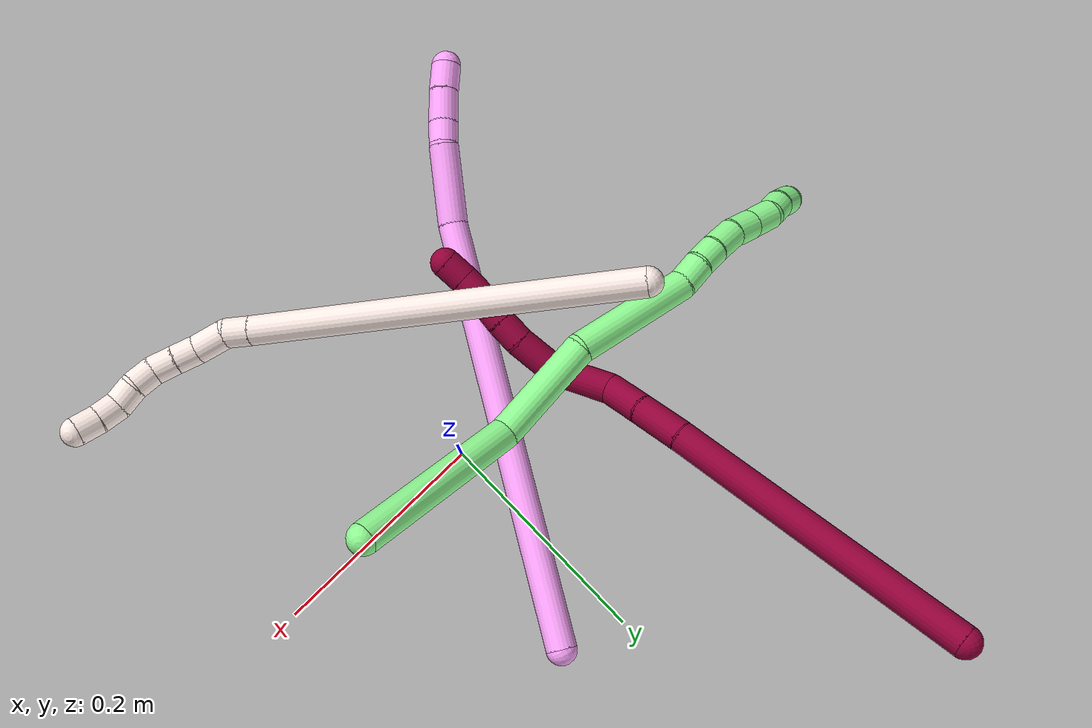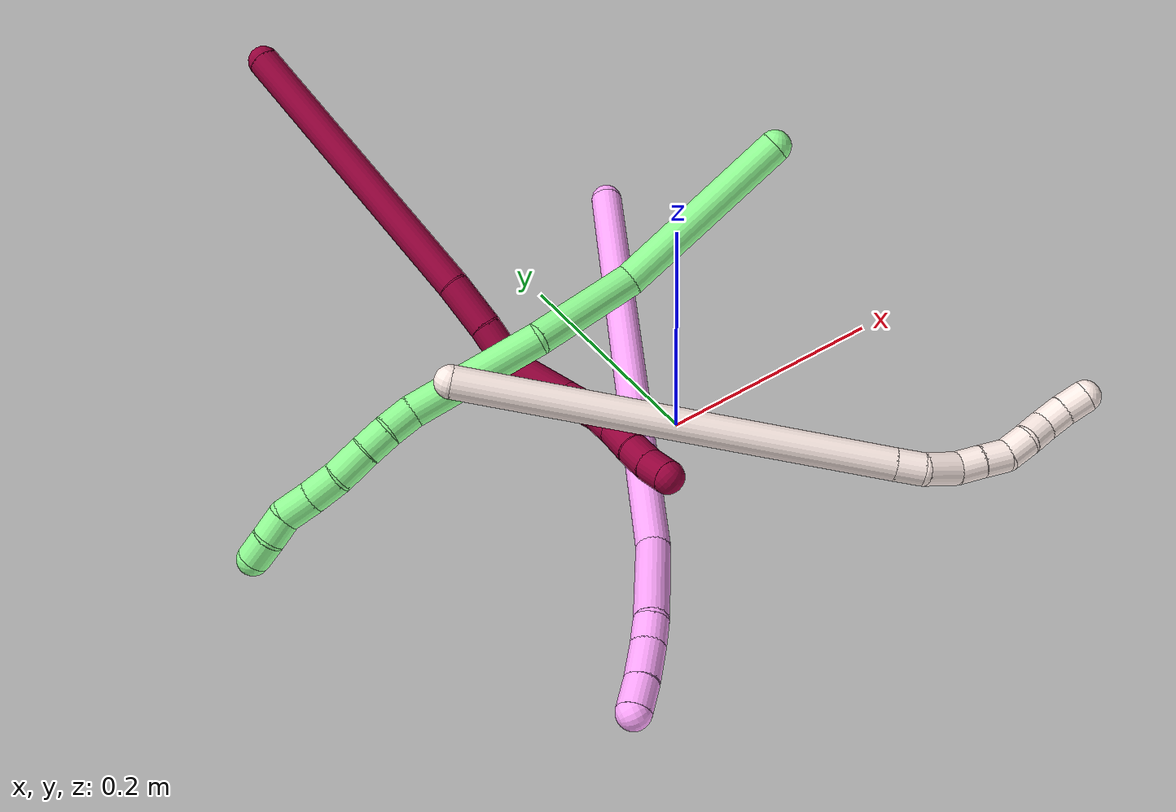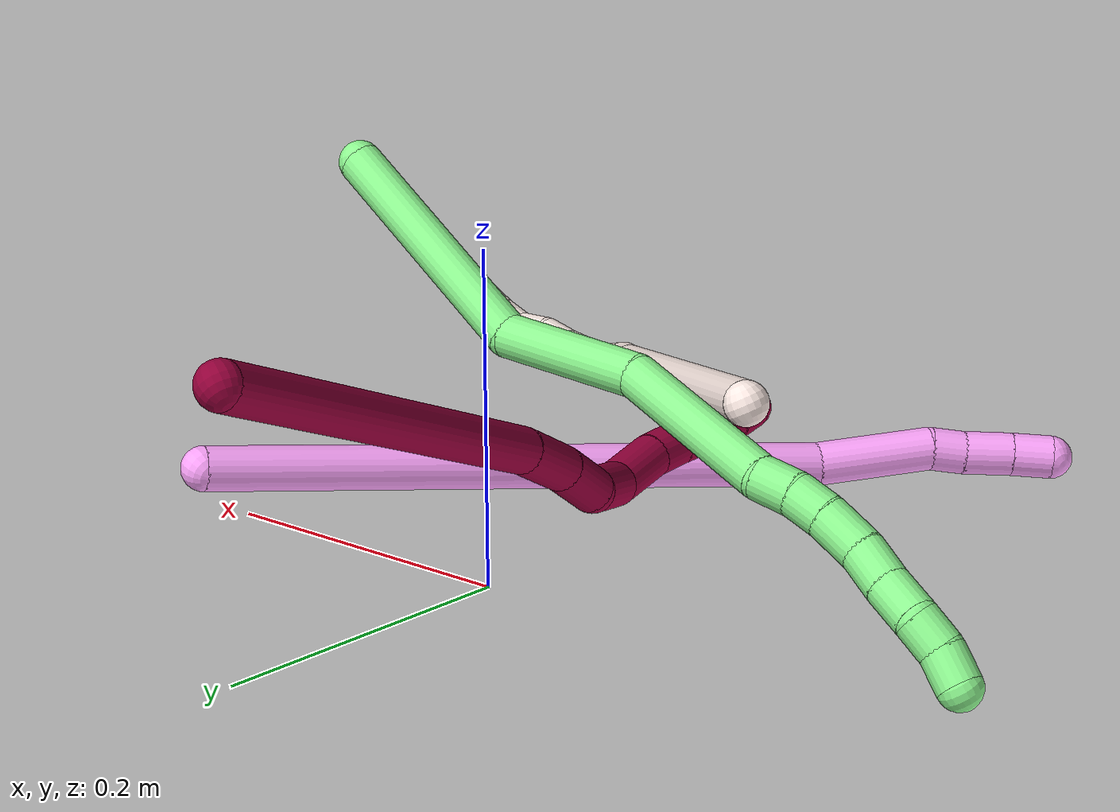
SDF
<sdf version="1.7">
 <world name="default">
  <model name="4">
   <static>0</static>
   <link name="4">
    <collision name="collision-cylinder-e_1_1_4">
     <pose>-0.142462 -0.096013 0.052816 1.06788 -0.915124 -0.566597</pose>
     <geometry><cylinder><radius>0.0125</radius><length>0.359463</length></cylinder></geometry>
     <surface>
      <friction><ode><mu>1.16</mu><mu2>1.16</mu2><slip1>0</slip1><slip2>0</slip2></ode></friction>
      <contact><ode><kp>1e+06</kp><kd>1</kd><max_vel>0</max_vel><min_depth>0.001</min_depth></ode></contact>
     </surface>
    </collision>
    <visual name="visual-cylinder-e_1_1_4">
     <pose>-0.142462 -0.096013 0.052816 1.06788 -0.915124 -0.566597</pose>
     <geometry><cylinder><radius>0.0125</radius><length>0.359463</length></cylinder></geometry>
     <material><ambient>1 0.65098 0.996078 1</ambient></material>
    </visual>
    <collision name="collision-cylinder-e_2_4_5">
     <pose>-0.306931 -0.214902 0.118329 1.06408 -0.699313 -0.422881</pose>
     <geometry><cylinder><radius>0.0125</radius><length>0.068375</length></cylinder></geometry>
     <surface>
      <friction><ode><mu>1.16</mu><mu2>1.16</mu2><slip1>0</slip1><slip2>0</slip2></ode></friction>
      <contact><ode><kp>1e+06</kp><kd>1</kd><max_vel>0</max_vel><min_depth>0.001</min_depth></ode></contact>
     </surface>
    </collision>
    <visual name="visual-cylinder-e_2_4_5">
     <pose>-0.306931 -0.214902 0.118329 1.06408 -0.699313 -0.422881</pose>
     <geometry><cylinder><radius>0.0125</radius><length>0.068375</length></cylinder></geometry>
     <material><ambient>1 0.65098 0.996078 1</ambient></material>
    </visual>
    <collision name="collision-cylinder-e_3_5_6">
     <pose>-0.336241 -0.242485 0.13605 0.752941 -0.81492 -0.338002</pose>
     <geometry><cylinder><radius>0.0125</radius><length>0.020076</length></cylinder></geometry>
     <surface>
      <friction><ode><mu>1.16</mu><mu2>1.16</mu2><slip1>0</slip1><slip2>0</slip2></ode></friction>
      <contact><ode><kp>1e+06</kp><kd>1</kd><max_vel>0</max_vel><min_depth>0.001</min_depth></ode></contact>
     </surface>
    </collision>
    <visual name="visual-cylinder-e_3_5_6">
     <pose>-0.336241 -0.242485 0.13605 0.752941 -0.81492 -0.338002</pose>
     <geometry><cylinder><radius>0.0125</radius><length>0.020076</length></cylinder></geometry>
     <material><ambient>1 0.65098 0.996078 1</ambient></material>
    </visual>
    <collision name="collision-cylinder-e_4_6_7">
     <pose>-0.35296 -0.255078 0.14841 0.821455 -0.71837 -0.324165</pose>
     <geometry><cylinder><radius>0.0125</radius><length>0.028607</length></cylinder></geometry>
     <surface>
      <friction><ode><mu>1.16</mu><mu2>1.16</mu2><slip1>0</slip1><slip2>0</slip2></ode></friction>
      <contact><ode><kp>1e+06</kp><kd>1</kd><max_vel>0</max_vel><min_depth>0.001</min_depth></ode></contact>
     </surface>
    </collision>
    <visual name="visual-cylinder-e_4_6_7">
     <pose>-0.35296 -0.255078 0.14841 0.821455 -0.71837 -0.324165</pose>
     <geometry><cylinder><radius>0.0125</radius><length>0.028607</length></cylinder></geometry>
     <material><ambient>1 0.65098 0.996078 1</ambient></material>
    </visual>
    <collision name="collision-cylinder-e_5_7_2">
     <pose>-0.369768 -0.269115 0.162473 0.740749 -0.681401 -0.273601</pose>
     <geometry><cylinder><radius>0.0125</radius><length>0.023478</length></cylinder></geometry>
     <surface>
      <friction><ode><mu>1.16</mu><mu2>1.16</mu2><slip1>0</slip1><slip2>0</slip2></ode></friction>
      <contact><ode><kp>1e+06</kp><kd>1</kd><max_vel>0</max_vel><min_depth>0.001</min_depth></ode></contact>
     </surface>
    </collision>
    <visual name="visual-cylinder-e_5_7_2">
     <pose>-0.369768 -0.269115 0.162473 0.740749 -0.681401 -0.273601</pose>
     <geometry><cylinder><radius>0.0125</radius><length>0.023478</length></cylinder></geometry>
     <material><ambient>1 0.65098 0.996078 1</ambient></material>
    </visual>
    <collision name="collision-sphere-2">
     <pose>-0.377162 -0.275268 0.169202 0 -0 0</pose>
     <geometry><sphere><radius>0.0125</radius></sphere></geometry>
     <surface>
      <friction><ode><mu>1.16</mu><mu2>1.16</mu2><slip1>0</slip1><slip2>0</slip2></ode></friction>
      <contact><ode><kp>1e+06</kp><kd>1</kd><max_vel>0</max_vel><min_depth>0.001</min_depth></ode></contact>
     </surface>
    </collision>
    <visual name="visual-sphere-2">
     <pose>-0.377162 -0.275268 0.169202 0 -0 0</pose>
     <geometry><sphere><radius>0.0125</radius></sphere></geometry>
     <material><ambient>1 0.65098 0.996078 1</ambient></material>
    </visual>
    <collision name="collision-sphere-7">
     <pose>-0.362374 -0.262962 0.155745 0 -0 0</pose>
     <geometry><sphere><radius>0.0125</radius></sphere></geometry>
     <surface>
      <friction><ode><mu>1.16</mu><mu2>1.16</mu2><slip1>0</slip1><slip2>0</slip2></ode></friction>
      <contact><ode><kp>1e+06</kp><kd>1</kd><max_vel>0</max_vel><min_depth>0.001</min_depth></ode></contact>
     </surface>
    </collision>
    <visual name="visual-sphere-7">
     <pose>-0.362374 -0.262962 0.155745 0 -0 0</pose>
     <geometry><sphere><radius>0.0125</radius></sphere></geometry>
     <material><ambient>1 0.65098 0.996078 1</ambient></material>
    </visual>
    <collision name="collision-sphere-6">
     <pose>-0.343546 -0.247194 0.141074 0 -0 0</pose>
     <geometry><sphere><radius>0.0125</radius></sphere></geometry>
     <surface>
      <friction><ode><mu>1.16</mu><mu2>1.16</mu2><slip1>0</slip1><slip2>0</slip2></ode></friction>
      <contact><ode><kp>1e+06</kp><kd>1</kd><max_vel>0</max_vel><min_depth>0.001</min_depth></ode></contact>
     </surface>
    </collision>
    <visual name="visual-sphere-6">
     <pose>-0.343546 -0.247194 0.141074 0 -0 0</pose>
     <geometry><sphere><radius>0.0125</radius></sphere></geometry>
     <material><ambient>1 0.65098 0.996078 1</ambient></material>
    </visual>
    <collision name="collision-sphere-5">
     <pose>-0.328937 -0.237777 0.131026 0 -0 0</pose>
     <geometry><sphere><radius>0.0125</radius></sphere></geometry>
     <surface>
      <friction><ode><mu>1.16</mu><mu2>1.16</mu2><slip1>0</slip1><slip2>0</slip2></ode></friction>
      <contact><ode><kp>1e+06</kp><kd>1</kd><max_vel>0</max_vel><min_depth>0.001</min_depth></ode></contact>
     </surface>
    </collision>
    <visual name="visual-sphere-5">
     <pose>-0.328937 -0.237777 0.131026 0 -0 0</pose>
     <geometry><sphere><radius>0.0125</radius></sphere></geometry>
     <material><ambient>1 0.65098 0.996078 1</ambient></material>
    </visual>
    <collision name="collision-sphere-1">
     <geometry><sphere><radius>0.0125</radius></sphere></geometry>
     <surface>
      <friction><ode><mu>1.16</mu><mu2>1.16</mu2><slip1>0</slip1><slip2>0</slip2></ode></friction>
      <contact><ode><kp>1e+06</kp><kd>1</kd><max_vel>0</max_vel><min_depth>0.001</min_depth></ode></contact>
     </surface>
    </collision>
    <visual name="visual-sphere-1">
     <geometry><sphere><radius>0.0125</radius></sphere></geometry>
     <material><ambient>1 0.65098 0.996078 1</ambient></material>
    </visual>
    <collision name="collision-sphere-4">
     <pose>-0.284924 -0.192026 0.105631 0 -0 0</pose>
     <geometry><sphere><radius>0.0125</radius></sphere></geometry>
     <surface>
      <friction><ode><mu>1.16</mu><mu2>1.16</mu2><slip1>0</slip1><slip2>0</slip2></ode></friction>
      <contact><ode><kp>1e+06</kp><kd>1</kd><max_vel>0</max_vel><min_depth>0.001</min_depth></ode></contact>
     </surface>
    </collision>
    <visual name="visual-sphere-4">
     <pose>-0.284924 -0.192026 0.105631 0 -0 0</pose>
     <geometry><sphere><radius>0.0125</radius></sphere></geometry>
     <material><ambient>1 0.65098 0.996078 1</ambient></material>
    </visual>
    <inertial>
     <pose>-0.195451 -0.135381 0.075735 0 -0 0</pose>
     <mass>0.5</mass>
     <inertia>
      <ixx>0.000712</ixx>
      <ixy>0</ixy>
      <ixz>0</ixz>
      <iyy>0.001749</iyy>
      <iyz>0</iyz>
      <izz>0.005214</izz>
     </inertia>
    </inertial>
   </link>
   <pose>0.050716 0.168124 0.10292 -1.85994 -0.609411 1.50383</pose>
  </model>
  <model name="8">
   <static>0</static>
   <link name="8">
    <collision name="collision-cylinder-e_1_1_4">
     <pose>0.067094 -0.105282 0.000125 1.56961 0.56738 0.566744</pose>
     <geometry><cylinder><radius>0.0125</radius><length>0.249686</length></cylinder></geometry>
     <surface>
      <friction><ode><mu>1.16</mu><mu2>1.16</mu2><slip1>0</slip1><slip2>0</slip2></ode></friction>
      <contact><ode><kp>1e+06</kp><kd>1</kd><max_vel>0</max_vel><min_depth>0.001</min_depth></ode></contact>
     </surface>
    </collision>
    <visual name="visual-cylinder-e_1_1_4">
     <pose>0.067094 -0.105282 0.000125 1.56961 0.56738 0.566744</pose>
     <geometry><cylinder><radius>0.0125</radius><length>0.249686</length></cylinder></geometry>
     <material><ambient>0.584314 0 0.227451 1</ambient></material>
    </visual>
    <collision name="collision-cylinder-e_2_4_5">
     <pose>0.146648 -0.226734 -0.001281 1.66515 0.654361 0.714052</pose>
     <geometry><cylinder><radius>0.0125</radius><length>0.040944</length></cylinder></geometry>
     <surface>
      <friction><ode><mu>1.16</mu><mu2>1.16</mu2><slip1>0</slip1><slip2>0</slip2></ode></friction>
      <contact><ode><kp>1e+06</kp><kd>1</kd><max_vel>0</max_vel><min_depth>0.001</min_depth></ode></contact>
     </surface>
    </collision>
    <visual name="visual-cylinder-e_2_4_5">
     <pose>0.146648 -0.226734 -0.001281 1.66515 0.654361 0.714052</pose>
     <geometry><cylinder><radius>0.0125</radius><length>0.040944</length></cylinder></geometry>
     <material><ambient>0.584314 0 0.227451 1</ambient></material>
    </visual>
    <collision name="collision-cylinder-e_3_5_6">
     <pose>0.170638 -0.255778 -0.005676 1.78974 0.718407 0.87582</pose>
     <geometry><cylinder><radius>0.0125</radius><length>0.035035</length></cylinder></geometry>
     <surface>
      <friction><ode><mu>1.16</mu><mu2>1.16</mu2><slip1>0</slip1><slip2>0</slip2></ode></friction>
      <contact><ode><kp>1e+06</kp><kd>1</kd><max_vel>0</max_vel><min_depth>0.001</min_depth></ode></contact>
     </surface>
    </collision>
    <visual name="visual-cylinder-e_3_5_6">
     <pose>0.170638 -0.255778 -0.005676 1.78974 0.718407 0.87582</pose>
     <geometry><cylinder><radius>0.0125</radius><length>0.035035</length></cylinder></geometry>
     <material><ambient>0.584314 0 0.227451 1</ambient></material>
    </visual>
    <collision name="collision-cylinder-e_4_6_7">
     <pose>0.197645 -0.286269 -0.001101 1.17125 0.680405 0.461173</pose>
     <geometry><cylinder><radius>0.0125</radius><length>0.049205</length></cylinder></geometry>
     <surface>
      <friction><ode><mu>1.16</mu><mu2>1.16</mu2><slip1>0</slip1><slip2>0</slip2></ode></friction>
      <contact><ode><kp>1e+06</kp><kd>1</kd><max_vel>0</max_vel><min_depth>0.001</min_depth></ode></contact>
     </surface>
    </collision>
    <visual name="visual-cylinder-e_4_6_7">
     <pose>0.197645 -0.286269 -0.001101 1.17125 0.680405 0.461173</pose>
     <geometry><cylinder><radius>0.0125</radius><length>0.049205</length></cylinder></geometry>
     <material><ambient>0.584314 0 0.227451 1</ambient></material>
    </visual>
    <collision name="collision-cylinder-e_5_7_8">
     <pose>0.216193 -0.320888 0.013569 1.16862 0.164651 0.109031</pose>
     <geometry><cylinder><radius>0.0125</radius><length>0.037456</length></cylinder></geometry>
     <surface>
      <friction><ode><mu>1.16</mu><mu2>1.16</mu2><slip1>0</slip1><slip2>0</slip2></ode></friction>
      <contact><ode><kp>1e+06</kp><kd>1</kd><max_vel>0</max_vel><min_depth>0.001</min_depth></ode></contact>
     </surface>
    </collision>
    <visual name="visual-cylinder-e_5_7_8">
     <pose>0.216193 -0.320888 0.013569 1.16862 0.164651 0.109031</pose>
     <geometry><cylinder><radius>0.0125</radius><length>0.037456</length></cylinder></geometry>
     <material><ambient>0.584314 0 0.227451 1</ambient></material>
    </visual>
    <collision name="collision-cylinder-e_6_8_9">
     <pose>0.220679 -0.348368 0.023311 1.33571 0.130752 0.103189</pose>
     <geometry><cylinder><radius>0.0125</radius><length>0.021737</length></cylinder></geometry>
     <surface>
      <friction><ode><mu>1.16</mu><mu2>1.16</mu2><slip1>0</slip1><slip2>0</slip2></ode></friction>
      <contact><ode><kp>1e+06</kp><kd>1</kd><max_vel>0</max_vel><min_depth>0.001</min_depth></ode></contact>
     </surface>
    </collision>
    <visual name="visual-cylinder-e_6_8_9">
     <pose>0.220679 -0.348368 0.023311 1.33571 0.130752 0.103189</pose>
     <geometry><cylinder><radius>0.0125</radius><length>0.021737</length></cylinder></geometry>
     <material><ambient>0.584314 0 0.227451 1</ambient></material>
    </visual>
    <collision name="collision-cylinder-e_7_9_10">
     <pose>0.223101 -0.371472 0.028112 1.39123 0.078139 0.065243</pose>
     <geometry><cylinder><radius>0.0125</radius><length>0.02574</length></cylinder></geometry>
     <surface>
      <friction><ode><mu>1.16</mu><mu2>1.16</mu2><slip1>0</slip1><slip2>0</slip2></ode></friction>
      <contact><ode><kp>1e+06</kp><kd>1</kd><max_vel>0</max_vel><min_depth>0.001</min_depth></ode></contact>
     </surface>
    </collision>
    <visual name="visual-cylinder-e_7_9_10">
     <pose>0.223101 -0.371472 0.028112 1.39123 0.078139 0.065243</pose>
     <geometry><cylinder><radius>0.0125</radius><length>0.02574</length></cylinder></geometry>
     <material><ambient>0.584314 0 0.227451 1</ambient></material>
    </visual>
    <collision name="collision-cylinder-e_8_10_11">
     <pose>0.225991 -0.393708 0.032479 1.35811 0.189493 0.153099</pose>
     <geometry><cylinder><radius>0.0125</radius><length>0.020025</length></cylinder></geometry>
     <surface>
      <friction><ode><mu>1.16</mu><mu2>1.16</mu2><slip1>0</slip1><slip2>0</slip2></ode></friction>
      <contact><ode><kp>1e+06</kp><kd>1</kd><max_vel>0</max_vel><min_depth>0.001</min_depth></ode></contact>
     </surface>
    </collision>
    <visual name="visual-cylinder-e_8_10_11">
     <pose>0.225991 -0.393708 0.032479 1.35811 0.189493 0.153099</pose>
     <geometry><cylinder><radius>0.0125</radius><length>0.020025</length></cylinder></geometry>
     <material><ambient>0.584314 0 0.227451 1</ambient></material>
    </visual>
    <collision name="collision-cylinder-e_9_11_2">
     <pose>0.229366 -0.412691 0.037973 1.22111 0.148177 0.103783</pose>
     <geometry><cylinder><radius>0.0125</radius><length>0.020172</length></cylinder></geometry>
     <surface>
      <friction><ode><mu>1.16</mu><mu2>1.16</mu2><slip1>0</slip1><slip2>0</slip2></ode></friction>
      <contact><ode><kp>1e+06</kp><kd>1</kd><max_vel>0</max_vel><min_depth>0.001</min_depth></ode></contact>
     </surface>
    </collision>
    <visual name="visual-cylinder-e_9_11_2">
     <pose>0.229366 -0.412691 0.037973 1.22111 0.148177 0.103783</pose>
     <geometry><cylinder><radius>0.0125</radius><length>0.020172</length></cylinder></geometry>
     <material><ambient>0.584314 0 0.227451 1</ambient></material>
    </visual>
    <collision name="collision-sphere-2">
     <pose>0.230855 -0.422063 0.04139 0 -0 0</pose>
     <geometry><sphere><radius>0.0125</radius></sphere></geometry>
     <surface>
      <friction><ode><mu>1.16</mu><mu2>1.16</mu2><slip1>0</slip1><slip2>0</slip2></ode></friction>
      <contact><ode><kp>1e+06</kp><kd>1</kd><max_vel>0</max_vel><min_depth>0.001</min_depth></ode></contact>
     </surface>
    </collision>
    <visual name="visual-sphere-2">
     <pose>0.230855 -0.422063 0.04139 0 -0 0</pose>
     <geometry><sphere><radius>0.0125</radius></sphere></geometry>
     <material><ambient>0.584314 0 0.227451 1</ambient></material>
    </visual>
    <collision name="collision-sphere-11">
     <pose>0.227877 -0.403319 0.034555 0 -0 0</pose>
     <geometry><sphere><radius>0.0125</radius></sphere></geometry>
     <surface>
      <friction><ode><mu>1.16</mu><mu2>1.16</mu2><slip1>0</slip1><slip2>0</slip2></ode></friction>
      <contact><ode><kp>1e+06</kp><kd>1</kd><max_vel>0</max_vel><min_depth>0.001</min_depth></ode></contact>
     </surface>
    </collision>
    <visual name="visual-sphere-11">
     <pose>0.227877 -0.403319 0.034555 0 -0 0</pose>
     <geometry><sphere><radius>0.0125</radius></sphere></geometry>
     <material><ambient>0.584314 0 0.227451 1</ambient></material>
    </visual>
    <collision name="collision-sphere-10">
     <pose>0.224106 -0.384096 0.030404 0 -0 0</pose>
     <geometry><sphere><radius>0.0125</radius></sphere></geometry>
     <surface>
      <friction><ode><mu>1.16</mu><mu2>1.16</mu2><slip1>0</slip1><slip2>0</slip2></ode></friction>
      <contact><ode><kp>1e+06</kp><kd>1</kd><max_vel>0</max_vel><min_depth>0.001</min_depth></ode></contact>
     </surface>
    </collision>
    <visual name="visual-sphere-10">
     <pose>0.224106 -0.384096 0.030404 0 -0 0</pose>
     <geometry><sphere><radius>0.0125</radius></sphere></geometry>
     <material><ambient>0.584314 0 0.227451 1</ambient></material>
    </visual>
    <collision name="collision-sphere-9">
     <pose>0.222096 -0.358847 0.02582 0 -0 0</pose>
     <geometry><sphere><radius>0.0125</radius></sphere></geometry>
     <surface>
      <friction><ode><mu>1.16</mu><mu2>1.16</mu2><slip1>0</slip1><slip2>0</slip2></ode></friction>
      <contact><ode><kp>1e+06</kp><kd>1</kd><max_vel>0</max_vel><min_depth>0.001</min_depth></ode></contact>
     </surface>
    </collision>
    <visual name="visual-sphere-9">
     <pose>0.222096 -0.358847 0.02582 0 -0 0</pose>
     <geometry><sphere><radius>0.0125</radius></sphere></geometry>
     <material><ambient>0.584314 0 0.227451 1</ambient></material>
    </visual>
    <collision name="collision-sphere-4">
     <pose>0.134187 -0.210563 0.000249 0 -0 0</pose>
     <geometry><sphere><radius>0.0125</radius></sphere></geometry>
     <surface>
      <friction><ode><mu>1.16</mu><mu2>1.16</mu2><slip1>0</slip1><slip2>0</slip2></ode></friction>
      <contact><ode><kp>1e+06</kp><kd>1</kd><max_vel>0</max_vel><min_depth>0.001</min_depth></ode></contact>
     </surface>
    </collision>
    <visual name="visual-sphere-4">
     <pose>0.134187 -0.210563 0.000249 0 -0 0</pose>
     <geometry><sphere><radius>0.0125</radius></sphere></geometry>
     <material><ambient>0.584314 0 0.227451 1</ambient></material>
    </visual>
    <collision name="collision-sphere-1">
     <geometry><sphere><radius>0.0125</radius></sphere></geometry>
     <surface>
      <friction><ode><mu>1.16</mu><mu2>1.16</mu2><slip1>0</slip1><slip2>0</slip2></ode></friction>
      <contact><ode><kp>1e+06</kp><kd>1</kd><max_vel>0</max_vel><min_depth>0.001</min_depth></ode></contact>
     </surface>
    </collision>
    <visual name="visual-sphere-1">
     <geometry><sphere><radius>0.0125</radius></sphere></geometry>
     <material><ambient>0.584314 0 0.227451 1</ambient></material>
    </visual>
    <collision name="collision-sphere-8">
     <pose>0.219262 -0.337889 0.020801 0 -0 0</pose>
     <geometry><sphere><radius>0.0125</radius></sphere></geometry>
     <surface>
      <friction><ode><mu>1.16</mu><mu2>1.16</mu2><slip1>0</slip1><slip2>0</slip2></ode></friction>
      <contact><ode><kp>1e+06</kp><kd>1</kd><max_vel>0</max_vel><min_depth>0.001</min_depth></ode></contact>
     </surface>
    </collision>
    <visual name="visual-sphere-8">
     <pose>0.219262 -0.337889 0.020801 0 -0 0</pose>
     <geometry><sphere><radius>0.0125</radius></sphere></geometry>
     <material><ambient>0.584314 0 0.227451 1</ambient></material>
    </visual>
    <collision name="collision-sphere-5">
     <pose>0.159108 -0.242905 -0.002812 0 -0 0</pose>
     <geometry><sphere><radius>0.0125</radius></sphere></geometry>
     <surface>
      <friction><ode><mu>1.16</mu><mu2>1.16</mu2><slip1>0</slip1><slip2>0</slip2></ode></friction>
      <contact><ode><kp>1e+06</kp><kd>1</kd><max_vel>0</max_vel><min_depth>0.001</min_depth></ode></contact>
     </surface>
    </collision>
    <visual name="visual-sphere-5">
     <pose>0.159108 -0.242905 -0.002812 0 -0 0</pose>
     <geometry><sphere><radius>0.0125</radius></sphere></geometry>
     <material><ambient>0.584314 0 0.227451 1</ambient></material>
    </visual>
    <collision name="collision-sphere-6">
     <pose>0.182168 -0.268652 -0.008541 0 -0 0</pose>
     <geometry><sphere><radius>0.0125</radius></sphere></geometry>
     <surface>
      <friction><ode><mu>1.16</mu><mu2>1.16</mu2><slip1>0</slip1><slip2>0</slip2></ode></friction>
      <contact><ode><kp>1e+06</kp><kd>1</kd><max_vel>0</max_vel><min_depth>0.001</min_depth></ode></contact>
     </surface>
    </collision>
    <visual name="visual-sphere-6">
     <pose>0.182168 -0.268652 -0.008541 0 -0 0</pose>
     <geometry><sphere><radius>0.0125</radius></sphere></geometry>
     <material><ambient>0.584314 0 0.227451 1</ambient></material>
    </visual>
    <collision name="collision-sphere-7">
     <pose>0.213123 -0.303887 0.006338 0 -0 0</pose>
     <geometry><sphere><radius>0.0125</radius></sphere></geometry>
     <surface>
      <friction><ode><mu>1.16</mu><mu2>1.16</mu2><slip1>0</slip1><slip2>0</slip2></ode></friction>
      <contact><ode><kp>1e+06</kp><kd>1</kd><max_vel>0</max_vel><min_depth>0.001</min_depth></ode></contact>
     </surface>
    </collision>
    <visual name="visual-sphere-7">
     <pose>0.213123 -0.303887 0.006338 0 -0 0</pose>
     <geometry><sphere><radius>0.0125</radius></sphere></geometry>
     <material><ambient>0.584314 0 0.227451 1</ambient></material>
    </visual>
    <inertial>
     <pose>0.132499 -0.20796 0.005761 0 -0 0</pose>
     <mass>0.5</mass>
     <inertia>
      <ixx>0.001579</ixx>
      <ixy>0</ixy>
      <ixz>0</ixz>
      <iyy>0.000965</iyy>
      <iyz>0</iyz>
      <izz>0.000416</izz>
     </inertia>
    </inertial>
   </link>
   <pose>-0.159054 0.342429 0.229452 -0.049609 0.835425 -0.311499</pose>
  </model>
  <model name="11">
   <static>0</static>
   <link name="11">
    <collision name="collision-cylinder-e_1_1_4">
     <pose>0.117943 -0.113232 0.01168 1.46801 0.803127 0.731684</pose>
     <geometry><cylinder><radius>0.0125</radius><length>0.327832</length></cylinder></geometry>
     <surface>
      <friction><ode><mu>1.16</mu><mu2>1.16</mu2><slip1>0</slip1><slip2>0</slip2></ode></friction>
      <contact><ode><kp>1e+06</kp><kd>1</kd><max_vel>0</max_vel><min_depth>0.001</min_depth></ode></contact>
     </surface>
    </collision>
    <visual name="visual-cylinder-e_1_1_4">
     <pose>0.117943 -0.113232 0.01168 1.46801 0.803127 0.731684</pose>
     <geometry><cylinder><radius>0.0125</radius><length>0.327832</length></cylinder></geometry>
     <material><ambient>1 0.933333 0.909804 1</ambient></material>
    </visual>
    <collision name="collision-cylinder-e_2_4_5">
     <pose>0.243558 -0.234116 0.024367 1.44008 0.78254 0.694391</pose>
     <geometry><cylinder><radius>0.0125</radius><length>0.021764</length></cylinder></geometry>
     <surface>
      <friction><ode><mu>1.16</mu><mu2>1.16</mu2><slip1>0</slip1><slip2>0</slip2></ode></friction>
      <contact><ode><kp>1e+06</kp><kd>1</kd><max_vel>0</max_vel><min_depth>0.001</min_depth></ode></contact>
     </surface>
    </collision>
    <visual name="visual-cylinder-e_2_4_5">
     <pose>0.243558 -0.234116 0.024367 1.44008 0.78254 0.694391</pose>
     <geometry><cylinder><radius>0.0125</radius><length>0.021764</length></cylinder></geometry>
     <material><ambient>1 0.933333 0.909804 1</ambient></material>
    </visual>
    <collision name="collision-cylinder-e_3_5_6">
     <pose>0.264539 -0.247352 0.026844 1.31324 1.16129 0.936323</pose>
     <geometry><cylinder><radius>0.0125</radius><length>0.029016</length></cylinder></geometry>
     <surface>
      <friction><ode><mu>1.16</mu><mu2>1.16</mu2><slip1>0</slip1><slip2>0</slip2></ode></friction>
      <contact><ode><kp>1e+06</kp><kd>1</kd><max_vel>0</max_vel><min_depth>0.001</min_depth></ode></contact>
     </surface>
    </collision>
    <visual name="visual-cylinder-e_3_5_6">
     <pose>0.264539 -0.247352 0.026844 1.31324 1.16129 0.936323</pose>
     <geometry><cylinder><radius>0.0125</radius><length>0.029016</length></cylinder></geometry>
     <material><ambient>1 0.933333 0.909804 1</ambient></material>
    </visual>
    <collision name="collision-cylinder-e_4_6_7">
     <pose>0.286019 -0.257311 0.032424 0.816487 0.937381 0.431203</pose>
     <geometry><cylinder><radius>0.0125</radius><length>0.020277</length></cylinder></geometry>
     <surface>
      <friction><ode><mu>1.16</mu><mu2>1.16</mu2><slip1>0</slip1><slip2>0</slip2></ode></friction>
      <contact><ode><kp>1e+06</kp><kd>1</kd><max_vel>0</max_vel><min_depth>0.001</min_depth></ode></contact>
     </surface>
    </collision>
    <visual name="visual-cylinder-e_4_6_7">
     <pose>0.286019 -0.257311 0.032424 0.816487 0.937381 0.431203</pose>
     <geometry><cylinder><radius>0.0125</radius><length>0.020277</length></cylinder></geometry>
     <material><ambient>1 0.933333 0.909804 1</ambient></material>
    </visual>
    <collision name="collision-cylinder-e_5_7_8">
     <pose>0.302793 -0.266083 0.040384 0.851777 0.973922 0.471479</pose>
     <geometry><cylinder><radius>0.0125</radius><length>0.020801</length></cylinder></geometry>
     <surface>
      <friction><ode><mu>1.16</mu><mu2>1.16</mu2><slip1>0</slip1><slip2>0</slip2></ode></friction>
      <contact><ode><kp>1e+06</kp><kd>1</kd><max_vel>0</max_vel><min_depth>0.001</min_depth></ode></contact>
     </surface>
    </collision>
    <visual name="visual-cylinder-e_5_7_8">
     <pose>0.302793 -0.266083 0.040384 0.851777 0.973922 0.471479</pose>
     <geometry><cylinder><radius>0.0125</radius><length>0.020801</length></cylinder></geometry>
     <material><ambient>1 0.933333 0.909804 1</ambient></material>
    </visual>
    <collision name="collision-cylinder-e_6_8_9">
     <pose>0.319038 -0.272096 0.050646 0.24664 0.85752 0.113198</pose>
     <geometry><cylinder><radius>0.0125</radius><length>0.020211</length></cylinder></geometry>
     <surface>
      <friction><ode><mu>1.16</mu><mu2>1.16</mu2><slip1>0</slip1><slip2>0</slip2></ode></friction>
      <contact><ode><kp>1e+06</kp><kd>1</kd><max_vel>0</max_vel><min_depth>0.001</min_depth></ode></contact>
     </surface>
    </collision>
    <visual name="visual-cylinder-e_6_8_9">
     <pose>0.319038 -0.272096 0.050646 0.24664 0.85752 0.113198</pose>
     <geometry><cylinder><radius>0.0125</radius><length>0.020211</length></cylinder></geometry>
     <material><ambient>1 0.933333 0.909804 1</ambient></material>
    </visual>
    <collision name="collision-cylinder-e_7_9_10">
     <pose>0.335546 -0.273606 0.061704 -0.022519 1.08808 -0.013623</pose>
     <geometry><cylinder><radius>0.0125</radius><length>0.020021</length></cylinder></geometry>
     <surface>
      <friction><ode><mu>1.16</mu><mu2>1.16</mu2><slip1>0</slip1><slip2>0</slip2></ode></friction>
      <contact><ode><kp>1e+06</kp><kd>1</kd><max_vel>0</max_vel><min_depth>0.001</min_depth></ode></contact>
     </surface>
    </collision>
    <visual name="visual-cylinder-e_7_9_10">
     <pose>0.335546 -0.273606 0.061704 -0.022519 1.08808 -0.013623</pose>
     <geometry><cylinder><radius>0.0125</radius><length>0.020021</length></cylinder></geometry>
     <material><ambient>1 0.933333 0.909804 1</ambient></material>
    </visual>
    <collision name="collision-cylinder-e_8_10_11">
     <pose>0.351225 -0.275564 0.07338 0.285445 0.74901 0.112844</pose>
     <geometry><cylinder><radius>0.0125</radius><length>0.020007</length></cylinder></geometry>
     <surface>
      <friction><ode><mu>1.16</mu><mu2>1.16</mu2><slip1>0</slip1><slip2>0</slip2></ode></friction>
      <contact><ode><kp>1e+06</kp><kd>1</kd><max_vel>0</max_vel><min_depth>0.001</min_depth></ode></contact>
     </surface>
    </collision>
    <visual name="visual-cylinder-e_8_10_11">
     <pose>0.351225 -0.275564 0.07338 0.285445 0.74901 0.112844</pose>
     <geometry><cylinder><radius>0.0125</radius><length>0.020007</length></cylinder></geometry>
     <material><ambient>1 0.933333 0.909804 1</ambient></material>
    </visual>
    <collision name="collision-cylinder-e_9_11_2">
     <pose>0.364571 -0.280732 0.087364 0.419905 0.709144 0.157456</pose>
     <geometry><cylinder><radius>0.0125</radius><length>0.020071</length></cylinder></geometry>
     <surface>
      <friction><ode><mu>1.16</mu><mu2>1.16</mu2><slip1>0</slip1><slip2>0</slip2></ode></friction>
      <contact><ode><kp>1e+06</kp><kd>1</kd><max_vel>0</max_vel><min_depth>0.001</min_depth></ode></contact>
     </surface>
    </collision>
    <visual name="visual-cylinder-e_9_11_2">
     <pose>0.364571 -0.280732 0.087364 0.419905 0.709144 0.157456</pose>
     <geometry><cylinder><radius>0.0125</radius><length>0.020071</length></cylinder></geometry>
     <material><ambient>1 0.933333 0.909804 1</ambient></material>
    </visual>
    <collision name="collision-sphere-2">
     <pose>0.371106 -0.283837 0.094318 0 -0 0</pose>
     <geometry><sphere><radius>0.0125</radius></sphere></geometry>
     <surface>
      <friction><ode><mu>1.16</mu><mu2>1.16</mu2><slip1>0</slip1><slip2>0</slip2></ode></friction>
      <contact><ode><kp>1e+06</kp><kd>1</kd><max_vel>0</max_vel><min_depth>0.001</min_depth></ode></contact>
     </surface>
    </collision>
    <visual name="visual-sphere-2">
     <pose>0.371106 -0.283837 0.094318 0 -0 0</pose>
     <geometry><sphere><radius>0.0125</radius></sphere></geometry>
     <material><ambient>1 0.933333 0.909804 1</ambient></material>
    </visual>
    <collision name="collision-sphere-11">
     <pose>0.358036 -0.277627 0.080409 0 -0 0</pose>
     <geometry><sphere><radius>0.0125</radius></sphere></geometry>
     <surface>
      <friction><ode><mu>1.16</mu><mu2>1.16</mu2><slip1>0</slip1><slip2>0</slip2></ode></friction>
      <contact><ode><kp>1e+06</kp><kd>1</kd><max_vel>0</max_vel><min_depth>0.001</min_depth></ode></contact>
     </surface>
    </collision>
    <visual name="visual-sphere-11">
     <pose>0.358036 -0.277627 0.080409 0 -0 0</pose>
     <geometry><sphere><radius>0.0125</radius></sphere></geometry>
     <material><ambient>1 0.933333 0.909804 1</ambient></material>
    </visual>
    <collision name="collision-sphere-10">
     <pose>0.344413 -0.273501 0.06635 0 -0 0</pose>
     <geometry><sphere><radius>0.0125</radius></sphere></geometry>
     <surface>
      <friction><ode><mu>1.16</mu><mu2>1.16</mu2><slip1>0</slip1><slip2>0</slip2></ode></friction>
      <contact><ode><kp>1e+06</kp><kd>1</kd><max_vel>0</max_vel><min_depth>0.001</min_depth></ode></contact>
     </surface>
    </collision>
    <visual name="visual-sphere-10">
     <pose>0.344413 -0.273501 0.06635 0 -0 0</pose>
     <geometry><sphere><radius>0.0125</radius></sphere></geometry>
     <material><ambient>1 0.933333 0.909804 1</ambient></material>
    </visual>
    <collision name="collision-sphere-9">
     <pose>0.32668 -0.273711 0.057058 0 -0 0</pose>
     <geometry><sphere><radius>0.0125</radius></sphere></geometry>
     <surface>
      <friction><ode><mu>1.16</mu><mu2>1.16</mu2><slip1>0</slip1><slip2>0</slip2></ode></friction>
      <contact><ode><kp>1e+06</kp><kd>1</kd><max_vel>0</max_vel><min_depth>0.001</min_depth></ode></contact>
     </surface>
    </collision>
    <visual name="visual-sphere-9">
     <pose>0.32668 -0.273711 0.057058 0 -0 0</pose>
     <geometry><sphere><radius>0.0125</radius></sphere></geometry>
     <material><ambient>1 0.933333 0.909804 1</ambient></material>
    </visual>
    <collision name="collision-sphere-4">
     <pose>0.235886 -0.226465 0.023361 0 -0 0</pose>
     <geometry><sphere><radius>0.0125</radius></sphere></geometry>
     <surface>
      <friction><ode><mu>1.16</mu><mu2>1.16</mu2><slip1>0</slip1><slip2>0</slip2></ode></friction>
      <contact><ode><kp>1e+06</kp><kd>1</kd><max_vel>0</max_vel><min_depth>0.001</min_depth></ode></contact>
     </surface>
    </collision>
    <visual name="visual-sphere-4">
     <pose>0.235886 -0.226465 0.023361 0 -0 0</pose>
     <geometry><sphere><radius>0.0125</radius></sphere></geometry>
     <material><ambient>1 0.933333 0.909804 1</ambient></material>
    </visual>
    <collision name="collision-sphere-1">
     <geometry><sphere><radius>0.0125</radius></sphere></geometry>
     <surface>
      <friction><ode><mu>1.16</mu><mu2>1.16</mu2><slip1>0</slip1><slip2>0</slip2></ode></friction>
      <contact><ode><kp>1e+06</kp><kd>1</kd><max_vel>0</max_vel><min_depth>0.001</min_depth></ode></contact>
     </surface>
    </collision>
    <visual name="visual-sphere-1">
     <geometry><sphere><radius>0.0125</radius></sphere></geometry>
     <material><ambient>1 0.933333 0.909804 1</ambient></material>
    </visual>
    <collision name="collision-sphere-8">
     <pose>0.311396 -0.270482 0.044234 0 -0 0</pose>
     <geometry><sphere><radius>0.0125</radius></sphere></geometry>
     <surface>
      <friction><ode><mu>1.16</mu><mu2>1.16</mu2><slip1>0</slip1><slip2>0</slip2></ode></friction>
      <contact><ode><kp>1e+06</kp><kd>1</kd><max_vel>0</max_vel><min_depth>0.001</min_depth></ode></contact>
     </surface>
    </collision>
    <visual name="visual-sphere-8">
     <pose>0.311396 -0.270482 0.044234 0 -0 0</pose>
     <geometry><sphere><radius>0.0125</radius></sphere></geometry>
     <material><ambient>1 0.933333 0.909804 1</ambient></material>
    </visual>
    <collision name="collision-sphere-5">
     <pose>0.251231 -0.241767 0.025372 0 -0 0</pose>
     <geometry><sphere><radius>0.0125</radius></sphere></geometry>
     <surface>
      <friction><ode><mu>1.16</mu><mu2>1.16</mu2><slip1>0</slip1><slip2>0</slip2></ode></friction>
      <contact><ode><kp>1e+06</kp><kd>1</kd><max_vel>0</max_vel><min_depth>0.001</min_depth></ode></contact>
     </surface>
    </collision>
    <visual name="visual-sphere-5">
     <pose>0.251231 -0.241767 0.025372 0 -0 0</pose>
     <geometry><sphere><radius>0.0125</radius></sphere></geometry>
     <material><ambient>1 0.933333 0.909804 1</ambient></material>
    </visual>
    <collision name="collision-sphere-6">
     <pose>0.277848 -0.252938 0.028315 0 -0 0</pose>
     <geometry><sphere><radius>0.0125</radius></sphere></geometry>
     <surface>
      <friction><ode><mu>1.16</mu><mu2>1.16</mu2><slip1>0</slip1><slip2>0</slip2></ode></friction>
      <contact><ode><kp>1e+06</kp><kd>1</kd><max_vel>0</max_vel><min_depth>0.001</min_depth></ode></contact>
     </surface>
    </collision>
    <visual name="visual-sphere-6">
     <pose>0.277848 -0.252938 0.028315 0 -0 0</pose>
     <geometry><sphere><radius>0.0125</radius></sphere></geometry>
     <material><ambient>1 0.933333 0.909804 1</ambient></material>
    </visual>
    <collision name="collision-sphere-7">
     <pose>0.294191 -0.261685 0.036534 0 -0 0</pose>
     <geometry><sphere><radius>0.0125</radius></sphere></geometry>
     <surface>
      <friction><ode><mu>1.16</mu><mu2>1.16</mu2><slip1>0</slip1><slip2>0</slip2></ode></friction>
      <contact><ode><kp>1e+06</kp><kd>1</kd><max_vel>0</max_vel><min_depth>0.001</min_depth></ode></contact>
     </surface>
    </collision>
    <visual name="visual-sphere-7">
     <pose>0.294191 -0.261685 0.036534 0 -0 0</pose>
     <geometry><sphere><radius>0.0125</radius></sphere></geometry>
     <material><ambient>1 0.933333 0.909804 1</ambient></material>
    </visual>
    <inertial>
     <pose>0.182501 -0.164542 0.024233 0 -0 0</pose>
     <mass>0.5</mass>
     <inertia>
      <ixx>0.002931</ixx>
      <ixy>0</ixy>
      <ixz>0</ixz>
      <iyy>0.002996</iyy>
      <iyz>0</iyz>
      <izz>-8.4e-05</izz>
     </inertia>
    </inertial>
   </link>
   <pose>-0.193968 0.008612 0.150838 -0.067325 0.460761 0.102321</pose>
  </model>
  <model name="13">
   <static>0</static>
   <link name="13">
    <collision name="collision-cylinder-e_1_1_4">
     <pose>-0.017969 0.041315 0.058408 -0.615636 -0.246075 0.07859</pose>
     <geometry><cylinder><radius>0.0125</radius><length>0.147531</length></cylinder></geometry>
     <surface>
      <friction><ode><mu>1.16</mu><mu2>1.16</mu2><slip1>0</slip1><slip2>0</slip2></ode></friction>
      <contact><ode><kp>1e+06</kp><kd>1</kd><max_vel>0</max_vel><min_depth>0.001</min_depth></ode></contact>
     </surface>
    </collision>
    <visual name="visual-cylinder-e_1_1_4">
     <pose>-0.017969 0.041315 0.058408 -0.615636 -0.246075 0.07859</pose>
     <geometry><cylinder><radius>0.0125</radius><length>0.147531</length></cylinder></geometry>
     <material><ambient>0.564706 0.984314 0.572549 1</ambient></material>
    </visual>
    <collision name="collision-cylinder-e_2_4_5">
     <pose>-0.034909 0.120009 0.1395 -1.02536 0.023536 -0.013249</pose>
     <geometry><cylinder><radius>0.0125</radius><length>0.087472</length></cylinder></geometry>
     <surface>
      <friction><ode><mu>1.16</mu><mu2>1.16</mu2><slip1>0</slip1><slip2>0</slip2></ode></friction>
      <contact><ode><kp>1e+06</kp><kd>1</kd><max_vel>0</max_vel><min_depth>0.001</min_depth></ode></contact>
     </surface>
    </collision>
    <visual name="visual-cylinder-e_2_4_5">
     <pose>-0.034909 0.120009 0.1395 -1.02536 0.023536 -0.013249</pose>
     <geometry><cylinder><radius>0.0125</radius><length>0.087472</length></cylinder></geometry>
     <material><ambient>0.564706 0.984314 0.572549 1</ambient></material>
    </visual>
    <collision name="collision-cylinder-e_3_5_6">
     <pose>-0.048182 0.196435 0.194505 -0.879347 -0.275002 0.129994</pose>
     <geometry><cylinder><radius>0.0125</radius><length>0.105335</length></cylinder></geometry>
     <surface>
      <friction><ode><mu>1.16</mu><mu2>1.16</mu2><slip1>0</slip1><slip2>0</slip2></ode></friction>
      <contact><ode><kp>1e+06</kp><kd>1</kd><max_vel>0</max_vel><min_depth>0.001</min_depth></ode></contact>
     </surface>
    </collision>
    <visual name="visual-cylinder-e_3_5_6">
     <pose>-0.048182 0.196435 0.194505 -0.879347 -0.275002 0.129994</pose>
     <geometry><cylinder><radius>0.0125</radius><length>0.105335</length></cylinder></geometry>
     <material><ambient>0.564706 0.984314 0.572549 1</ambient></material>
    </visual>
    <collision name="collision-cylinder-e_4_6_7">
     <pose>-0.062437 0.244341 0.233936 -0.894608 0.004107 -0.00197</pose>
     <geometry><cylinder><radius>0.0125</radius><length>0.022718</length></cylinder></geometry>
     <surface>
      <friction><ode><mu>1.16</mu><mu2>1.16</mu2><slip1>0</slip1><slip2>0</slip2></ode></friction>
      <contact><ode><kp>1e+06</kp><kd>1</kd><max_vel>0</max_vel><min_depth>0.001</min_depth></ode></contact>
     </surface>
    </collision>
    <visual name="visual-cylinder-e_4_6_7">
     <pose>-0.062437 0.244341 0.233936 -0.894608 0.004107 -0.00197</pose>
     <geometry><cylinder><radius>0.0125</radius><length>0.022718</length></cylinder></geometry>
     <material><ambient>0.564706 0.984314 0.572549 1</ambient></material>
    </visual>
    <collision name="collision-cylinder-e_5_7_8">
     <pose>-0.063386 0.260216 0.248647 -0.745272 -0.096004 0.037552</pose>
     <geometry><cylinder><radius>0.0125</radius><length>0.020786</length></cylinder></geometry>
     <surface>
      <friction><ode><mu>1.16</mu><mu2>1.16</mu2><slip1>0</slip1><slip2>0</slip2></ode></friction>
      <contact><ode><kp>1e+06</kp><kd>1</kd><max_vel>0</max_vel><min_depth>0.001</min_depth></ode></contact>
     </surface>
    </collision>
    <visual name="visual-cylinder-e_5_7_8">
     <pose>-0.063386 0.260216 0.248647 -0.745272 -0.096004 0.037552</pose>
     <geometry><cylinder><radius>0.0125</radius><length>0.020786</length></cylinder></geometry>
     <material><ambient>0.564706 0.984314 0.572549 1</ambient></material>
    </visual>
    <collision name="collision-cylinder-e_6_8_9">
     <pose>-0.066652 0.275267 0.266803 -0.650737 -0.169476 0.057296</pose>
     <geometry><cylinder><radius>0.0125</radius><length>0.026914</length></cylinder></geometry>
     <surface>
      <friction><ode><mu>1.16</mu><mu2>1.16</mu2><slip1>0</slip1><slip2>0</slip2></ode></friction>
      <contact><ode><kp>1e+06</kp><kd>1</kd><max_vel>0</max_vel><min_depth>0.001</min_depth></ode></contact>
     </surface>
    </collision>
    <visual name="visual-cylinder-e_6_8_9">
     <pose>-0.066652 0.275267 0.266803 -0.650737 -0.169476 0.057296</pose>
     <geometry><cylinder><radius>0.0125</radius><length>0.026914</length></cylinder></geometry>
     <material><ambient>0.564706 0.984314 0.572549 1</ambient></material>
    </visual>
    <collision name="collision-cylinder-e_7_9_10">
     <pose>-0.07322 0.289858 0.286401 -0.627215 -0.367271 0.120321</pose>
     <geometry><cylinder><radius>0.0125</radius><length>0.023939</length></cylinder></geometry>
     <surface>
      <friction><ode><mu>1.16</mu><mu2>1.16</mu2><slip1>0</slip1><slip2>0</slip2></ode></friction>
      <contact><ode><kp>1e+06</kp><kd>1</kd><max_vel>0</max_vel><min_depth>0.001</min_depth></ode></contact>
     </surface>
    </collision>
    <visual name="visual-cylinder-e_7_9_10">
     <pose>-0.07322 0.289858 0.286401 -0.627215 -0.367271 0.120321</pose>
     <geometry><cylinder><radius>0.0125</radius><length>0.023939</length></cylinder></geometry>
     <material><ambient>0.564706 0.984314 0.572549 1</ambient></material>
    </visual>
    <collision name="collision-cylinder-e_8_10_11">
     <pose>-0.081687 0.304003 0.304116 -0.718959 -0.347184 0.131611</pose>
     <geometry><cylinder><radius>0.0125</radius><length>0.024506</length></cylinder></geometry>
     <surface>
      <friction><ode><mu>1.16</mu><mu2>1.16</mu2><slip1>0</slip1><slip2>0</slip2></ode></friction>
      <contact><ode><kp>1e+06</kp><kd>1</kd><max_vel>0</max_vel><min_depth>0.001</min_depth></ode></contact>
     </surface>
    </collision>
    <visual name="visual-cylinder-e_8_10_11">
     <pose>-0.081687 0.304003 0.304116 -0.718959 -0.347184 0.131611</pose>
     <geometry><cylinder><radius>0.0125</radius><length>0.024506</length></cylinder></geometry>
     <material><ambient>0.564706 0.984314 0.572549 1</ambient></material>
    </visual>
    <collision name="collision-cylinder-e_9_11_12">
     <pose>-0.087294 0.315755 0.321852 -0.430595 -0.143187 0.031364</pose>
     <geometry><cylinder><radius>0.0125</radius><length>0.020157</length></cylinder></geometry>
     <surface>
      <friction><ode><mu>1.16</mu><mu2>1.16</mu2><slip1>0</slip1><slip2>0</slip2></ode></friction>
      <contact><ode><kp>1e+06</kp><kd>1</kd><max_vel>0</max_vel><min_depth>0.001</min_depth></ode></contact>
     </surface>
    </collision>
    <visual name="visual-cylinder-e_9_11_12">
     <pose>-0.087294 0.315755 0.321852 -0.430595 -0.143187 0.031364</pose>
     <geometry><cylinder><radius>0.0125</radius><length>0.020157</length></cylinder></geometry>
     <material><ambient>0.564706 0.984314 0.572549 1</ambient></material>
    </visual>
    <collision name="collision-cylinder-e_10_12_2">
     <pose>-0.092141 0.322862 0.340204 -0.306899 -0.336564 0.05254</pose>
     <geometry><cylinder><radius>0.0125</radius><length>0.020643</length></cylinder></geometry>
     <surface>
      <friction><ode><mu>1.16</mu><mu2>1.16</mu2><slip1>0</slip1><slip2>0</slip2></ode></friction>
      <contact><ode><kp>1e+06</kp><kd>1</kd><max_vel>0</max_vel><min_depth>0.001</min_depth></ode></contact>
     </surface>
    </collision>
    <visual name="visual-cylinder-e_10_12_2">
     <pose>-0.092141 0.322862 0.340204 -0.306899 -0.336564 0.05254</pose>
     <geometry><cylinder><radius>0.0125</radius><length>0.020643</length></cylinder></geometry>
     <material><ambient>0.564706 0.984314 0.572549 1</ambient></material>
    </visual>
    <collision name="collision-sphere-2">
     <pose>-0.09555 0.325805 0.349491 0 -0 0</pose>
     <geometry><sphere><radius>0.0125</radius></sphere></geometry>
     <surface>
      <friction><ode><mu>1.16</mu><mu2>1.16</mu2><slip1>0</slip1><slip2>0</slip2></ode></friction>
      <contact><ode><kp>1e+06</kp><kd>1</kd><max_vel>0</max_vel><min_depth>0.001</min_depth></ode></contact>
     </surface>
    </collision>
    <visual name="visual-sphere-2">
     <pose>-0.09555 0.325805 0.349491 0 -0 0</pose>
     <geometry><sphere><radius>0.0125</radius></sphere></geometry>
     <material><ambient>0.564706 0.984314 0.572549 1</ambient></material>
    </visual>
    <collision name="collision-sphere-12">
     <pose>-0.088732 0.319919 0.330916 0 -0 0</pose>
     <geometry><sphere><radius>0.0125</radius></sphere></geometry>
     <surface>
      <friction><ode><mu>1.16</mu><mu2>1.16</mu2><slip1>0</slip1><slip2>0</slip2></ode></friction>
      <contact><ode><kp>1e+06</kp><kd>1</kd><max_vel>0</max_vel><min_depth>0.001</min_depth></ode></contact>
     </surface>
    </collision>
    <visual name="visual-sphere-12">
     <pose>-0.088732 0.319919 0.330916 0 -0 0</pose>
     <geometry><sphere><radius>0.0125</radius></sphere></geometry>
     <material><ambient>0.564706 0.984314 0.572549 1</ambient></material>
    </visual>
    <collision name="collision-sphere-11">
     <pose>-0.085856 0.311591 0.312787 0 -0 0</pose>
     <geometry><sphere><radius>0.0125</radius></sphere></geometry>
     <surface>
      <friction><ode><mu>1.16</mu><mu2>1.16</mu2><slip1>0</slip1><slip2>0</slip2></ode></friction>
      <contact><ode><kp>1e+06</kp><kd>1</kd><max_vel>0</max_vel><min_depth>0.001</min_depth></ode></contact>
     </surface>
    </collision>
    <visual name="visual-sphere-11">
     <pose>-0.085856 0.311591 0.312787 0 -0 0</pose>
     <geometry><sphere><radius>0.0125</radius></sphere></geometry>
     <material><ambient>0.564706 0.984314 0.572549 1</ambient></material>
    </visual>
    <collision name="collision-sphere-10">
     <pose>-0.077518 0.296414 0.295446 0 -0 0</pose>
     <geometry><sphere><radius>0.0125</radius></sphere></geometry>
     <surface>
      <friction><ode><mu>1.16</mu><mu2>1.16</mu2><slip1>0</slip1><slip2>0</slip2></ode></friction>
      <contact><ode><kp>1e+06</kp><kd>1</kd><max_vel>0</max_vel><min_depth>0.001</min_depth></ode></contact>
     </surface>
    </collision>
    <visual name="visual-sphere-10">
     <pose>-0.077518 0.296414 0.295446 0 -0 0</pose>
     <geometry><sphere><radius>0.0125</radius></sphere></geometry>
     <material><ambient>0.564706 0.984314 0.572549 1</ambient></material>
    </visual>
    <collision name="collision-sphere-9">
     <pose>-0.068922 0.283302 0.277356 0 -0 0</pose>
     <geometry><sphere><radius>0.0125</radius></sphere></geometry>
     <surface>
      <friction><ode><mu>1.16</mu><mu2>1.16</mu2><slip1>0</slip1><slip2>0</slip2></ode></friction>
      <contact><ode><kp>1e+06</kp><kd>1</kd><max_vel>0</max_vel><min_depth>0.001</min_depth></ode></contact>
     </surface>
    </collision>
    <visual name="visual-sphere-9">
     <pose>-0.068922 0.283302 0.277356 0 -0 0</pose>
     <geometry><sphere><radius>0.0125</radius></sphere></geometry>
     <material><ambient>0.564706 0.984314 0.572549 1</ambient></material>
    </visual>
    <collision name="collision-sphere-4">
     <pose>-0.035938 0.082629 0.116817 0 -0 0</pose>
     <geometry><sphere><radius>0.0125</radius></sphere></geometry>
     <surface>
      <friction><ode><mu>1.16</mu><mu2>1.16</mu2><slip1>0</slip1><slip2>0</slip2></ode></friction>
      <contact><ode><kp>1e+06</kp><kd>1</kd><max_vel>0</max_vel><min_depth>0.001</min_depth></ode></contact>
     </surface>
    </collision>
    <visual name="visual-sphere-4">
     <pose>-0.035938 0.082629 0.116817 0 -0 0</pose>
     <geometry><sphere><radius>0.0125</radius></sphere></geometry>
     <material><ambient>0.564706 0.984314 0.572549 1</ambient></material>
    </visual>
    <collision name="collision-sphere-1">
     <geometry><sphere><radius>0.0125</radius></sphere></geometry>
     <surface>
      <friction><ode><mu>1.16</mu><mu2>1.16</mu2><slip1>0</slip1><slip2>0</slip2></ode></friction>
      <contact><ode><kp>1e+06</kp><kd>1</kd><max_vel>0</max_vel><min_depth>0.001</min_depth></ode></contact>
     </surface>
    </collision>
    <visual name="visual-sphere-1">
     <geometry><sphere><radius>0.0125</radius></sphere></geometry>
     <material><ambient>0.564706 0.984314 0.572549 1</ambient></material>
    </visual>
    <collision name="collision-sphere-8">
     <pose>-0.064382 0.267232 0.256249 0 -0 0</pose>
     <geometry><sphere><radius>0.0125</radius></sphere></geometry>
     <surface>
      <friction><ode><mu>1.16</mu><mu2>1.16</mu2><slip1>0</slip1><slip2>0</slip2></ode></friction>
      <contact><ode><kp>1e+06</kp><kd>1</kd><max_vel>0</max_vel><min_depth>0.001</min_depth></ode></contact>
     </surface>
    </collision>
    <visual name="visual-sphere-8">
     <pose>-0.064382 0.267232 0.256249 0 -0 0</pose>
     <geometry><sphere><radius>0.0125</radius></sphere></geometry>
     <material><ambient>0.564706 0.984314 0.572549 1</ambient></material>
    </visual>
    <collision name="collision-sphere-5">
     <pose>-0.03388 0.157388 0.162183 0 -0 0</pose>
     <geometry><sphere><radius>0.0125</radius></sphere></geometry>
     <surface>
      <friction><ode><mu>1.16</mu><mu2>1.16</mu2><slip1>0</slip1><slip2>0</slip2></ode></friction>
      <contact><ode><kp>1e+06</kp><kd>1</kd><max_vel>0</max_vel><min_depth>0.001</min_depth></ode></contact>
     </surface>
    </collision>
    <visual name="visual-sphere-5">
     <pose>-0.03388 0.157388 0.162183 0 -0 0</pose>
     <geometry><sphere><radius>0.0125</radius></sphere></geometry>
     <material><ambient>0.564706 0.984314 0.572549 1</ambient></material>
    </visual>
    <collision name="collision-sphere-6">
     <pose>-0.062483 0.235481 0.226827 0 -0 0</pose>
     <geometry><sphere><radius>0.0125</radius></sphere></geometry>
     <surface>
      <friction><ode><mu>1.16</mu><mu2>1.16</mu2><slip1>0</slip1><slip2>0</slip2></ode></friction>
      <contact><ode><kp>1e+06</kp><kd>1</kd><max_vel>0</max_vel><min_depth>0.001</min_depth></ode></contact>
     </surface>
    </collision>
    <visual name="visual-sphere-6">
     <pose>-0.062483 0.235481 0.226827 0 -0 0</pose>
     <geometry><sphere><radius>0.0125</radius></sphere></geometry>
     <material><ambient>0.564706 0.984314 0.572549 1</ambient></material>
    </visual>
    <collision name="collision-sphere-7">
     <pose>-0.06239 0.2532 0.241044 0 -0 0</pose>
     <geometry><sphere><radius>0.0125</radius></sphere></geometry>
     <surface>
      <friction><ode><mu>1.16</mu><mu2>1.16</mu2><slip1>0</slip1><slip2>0</slip2></ode></friction>
      <contact><ode><kp>1e+06</kp><kd>1</kd><max_vel>0</max_vel><min_depth>0.001</min_depth></ode></contact>
     </surface>
    </collision>
    <visual name="visual-sphere-7">
     <pose>-0.06239 0.2532 0.241044 0 -0 0</pose>
     <geometry><sphere><radius>0.0125</radius></sphere></geometry>
     <material><ambient>0.564706 0.984314 0.572549 1</ambient></material>
    </visual>
    <inertial>
     <pose>-0.045452 0.166141 0.173581 0 -0 0</pose>
     <mass>0.5</mass>
     <inertia>
      <ixx>0.000459</ixx>
      <ixy>0</ixy>
      <ixz>0</ixz>
      <iyy>0.000393</iyy>
      <iyz>0</iyz>
      <izz>-0.000164</izz>
     </inertia>
    </inertial>
   </link>
   <pose>0.092353 0.002978 0.236957 2.69958 -0.255945 -1.54012</pose>
  </model>
 </world>
</sdf>
